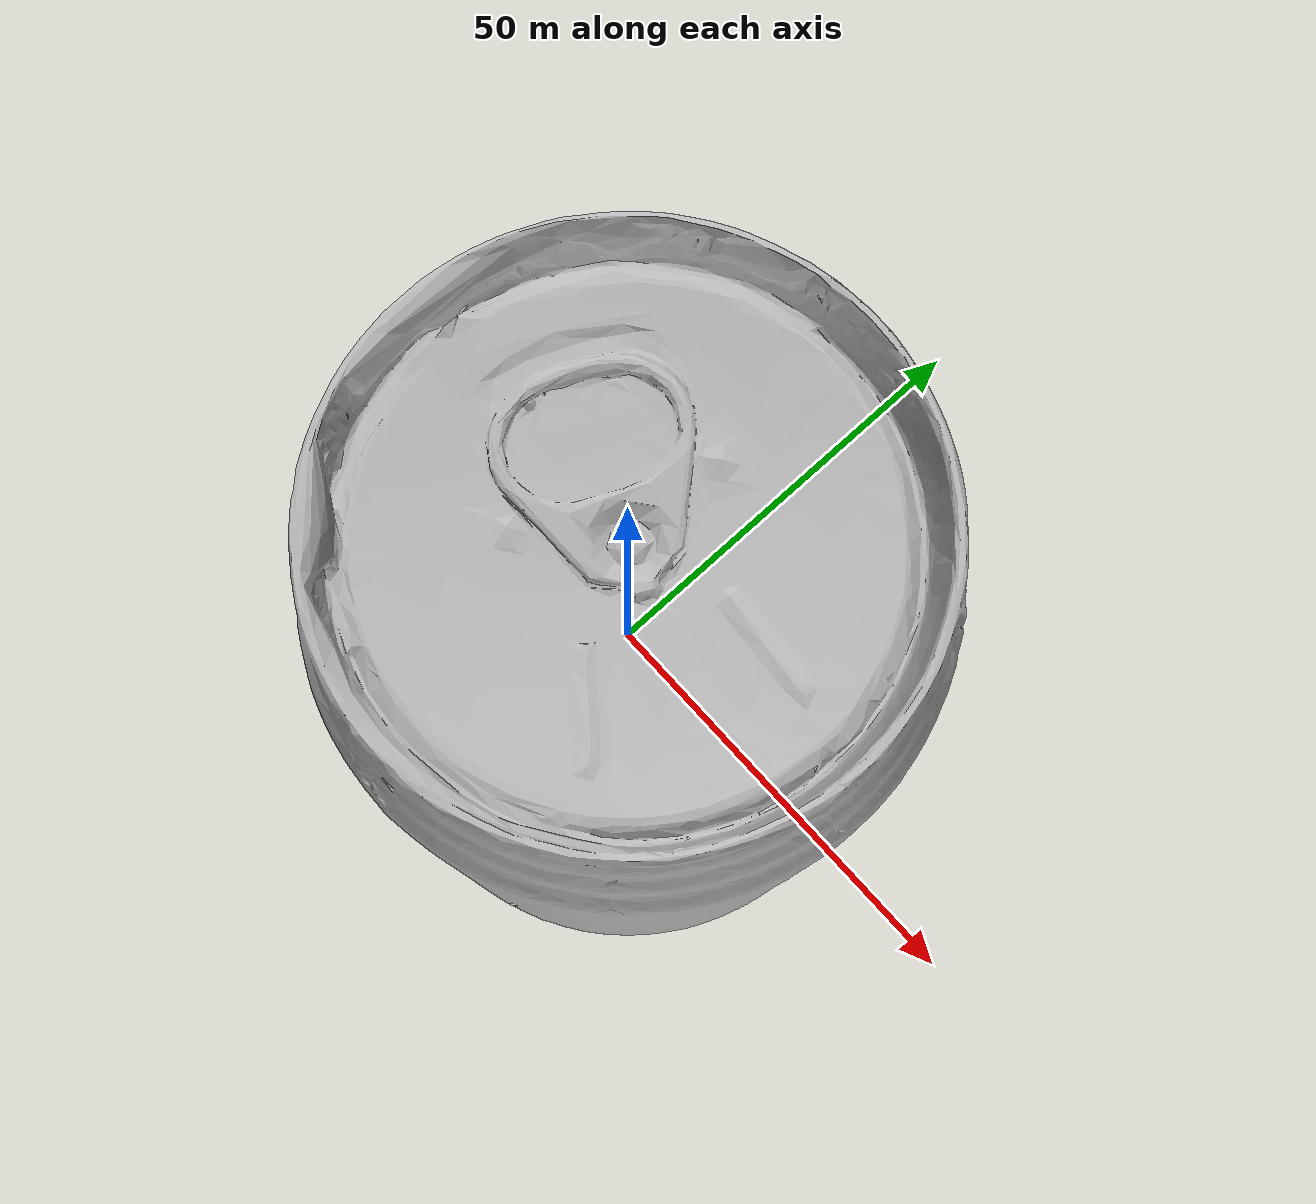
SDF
<sdf version="1.4">
 <world name="default">
  <light name="light1" type="point">
   <pose>0 0 1 0 0 0</pose>
   <diffuse>3 3 3 1</diffuse>
   <specular>3 3 3 1</specular>
  </light>
  <light name="light2" type="point">
   <pose>0 0.5 2 0 0 0</pose>
   <diffuse>1 1 1 1</diffuse>
   <specular>1 1 1 1</specular>
  </light>
  <light name="light3" type="point">
   <pose>0 0.5 2 0 0 0</pose>
   <diffuse>3 3 3 1</diffuse>
   <specular>3 3 3 1</specular>
  </light>
  <scene><ambient>0.7 0.7 0.7</ambient></scene>
  <model name="box2">
   <link name="link_box2">
    <collision name="default">
     <geometry>
      <mesh><uri>model://wooden_puzzle2/collision_meshes/collision.obj</uri><scale>1.0 1.0 1.0</scale></mesh>
     </geometry>
     <surface>
      <friction><ode><mu>0.5</mu><mu2>0.5</mu2></ode></friction>
      <contact><ode><max_vel>0</max_vel><min_depth>0.0001</min_depth><kp>1e8</kp></ode></contact>
     </surface>
    </collision>
    <visual name="default">
     <geometry>
      <mesh><uri>model://wooden_puzzle2/visual_meshes/visual.dae</uri><scale>1.0 1.0 1.0</scale></mesh>
     </geometry>
    </visual>
    <inertial>
     <mass>0.03464552015066147</mass>
     <pose>2.7402536943554878e-05 4.997663199901581e-05 6.587122334167361e-05 -0.1920274284601778 0.6112817660648215 -0.6338676817937987</pose>
     <inertia>
      <ixx>6.440233e-06</ixx>
      <iyy>6.6177017e-06</iyy>
      <izz>6.52356e-06</izz>
      <ixy>0</ixy>
      <ixz>0</ixz>
      <iyz>0</iyz>
     </inertia>
    </inertial>
   </link>
   <pose>-0.05110970884561539 0.38317883014678955 0.016917744651436806 0.020847647021230202 0.0007221889222049896 -3.097059253205963</pose>
  </model>
  <model name="box3">
   <link name="link_box3">
    <collision name="default">
     <geometry>
      <mesh><uri>model://wooden_puzzle1/collision_meshes/collision.obj</uri><scale>1.0 1.0 1.0</scale></mesh>
     </geometry>
     <surface>
      <friction><ode><mu>0.5</mu><mu2>0.5</mu2></ode></friction>
      <contact><ode><max_vel>0</max_vel><min_depth>0.0001</min_depth><kp>1e8</kp></ode></contact>
     </surface>
    </collision>
    <visual name="default">
     <geometry>
      <mesh><uri>model://wooden_puzzle1/visual_meshes/visual.dae</uri><scale>1.0 1.0 1.0</scale></mesh>
     </geometry>
    </visual>
    <inertial>
     <mass>0.03424873203039169</mass>
     <pose>-0.0001735068071866408 7.97226166469045e-05 -9.191554272547364e-05 -0.07784599296854997 -0.2636133645981781 -0.5528677830585703</pose>
     <inertia>
      <ixx>6.4618e-06</ixx>
      <iyy>6.3374077e-06</iyy>
      <izz>6.413012e-06</izz>
      <ixy>0</ixy>
      <ixz>0</ixz>
      <iyz>0</iyz>
     </inertia>
    </inertial>
   </link>
   <pose>0.09549501538276672 0.2652285099029541 0.016802025958895683 0.010510699748426989 -0.009455492169241514 -0.9628472074758734</pose>
  </model>
  <model name="can1">
   <link name="link_can1">
    <collision name="default">
     <geometry>
      <mesh><uri>model://pepsi/collision_meshes/collision.obj</uri><scale>1.0 1.0 1.0</scale></mesh>
     </geometry>
     <surface>
      <friction><ode><mu>0.5</mu><mu2>0.5</mu2></ode></friction>
      <contact><ode><max_vel>0</max_vel><min_depth>0.0001</min_depth><kp>1e8</kp></ode></contact>
     </surface>
    </collision>
    <visual name="default">
     <geometry><mesh><uri>model://pepsi/visual_meshes/visual.dae</uri><scale>1.0 1.0 1.0</scale></mesh></geometry>
    </visual>
    <inertial>
     <mass>0.3250696361064911</mass>
     <pose>-7.5590331107378e-05 2.99312814604491e-05 -0.0003384356386959553 -0.0010678660158137958 -0.0021735266966629516 0.5674177426725915</pose>
     <inertia>
      <ixx>0.0006476009</ixx>
      <iyy>0.0006471292</iyy>
      <izz>0.00013783273</izz>
      <ixy>0</ixy>
      <ixz>0</ixz>
      <iyz>0</iyz>
     </inertia>
    </inertial>
   </link>
   <pose>-0.06954823434352875 -0.20489339530467987 0.07449636608362198 -1.924137852810632e-05 1.8442182524699707e-06 -0.4391687054676795</pose>
  </model>
  <model name="can2">
   <link name="link_can2">
    <collision name="default">
     <geometry>
      <mesh><uri>model://redbull/collision_meshes/collision.obj</uri><scale>1.0 1.0 1.0</scale></mesh>
     </geometry>
     <surface>
      <friction><ode><mu>0.5</mu><mu2>0.5</mu2></ode></friction>
      <contact><ode><max_vel>0</max_vel><min_depth>0.0001</min_depth><kp>1e8</kp></ode></contact>
     </surface>
    </collision>
    <visual name="default">
     <geometry>
      <mesh><uri>model://redbull/visual_meshes/visual.dae</uri><scale>1.0 1.0 1.0</scale></mesh>
     </geometry>
    </visual>
    <inertial>
     <mass>0.28235653042793274</mass>
     <pose>-2.2127058400656097e-05 -0.00012659600179176778 -0.0006860987632535398 0.0011377565977294822 -0.010800863454111471 0.5858141898730843</pose>
     <inertia>
      <ixx>0.0002654759</ixx>
      <iyy>0.0002657</iyy>
      <izz>0.00015754026</izz>
      <ixy>0</ixy>
      <ixz>0</ixz>
      <iyz>0</iyz>
     </inertia>
    </inertial>
   </link>
   <pose>0.26745015382766724 -0.08828902989625931 0.04638563469052315 -0.010489424712488312 0.007261313421617878 -1.5651675199568174</pose>
  </model>
  <physics type="ode">
   <max_contacts>50</max_contacts>
   <ode>
    <solver><type>quick</type><iters>75</iters></solver>
    <constraints>
     <contact_max_correcting_vel>0</contact_max_correcting_vel>
     <contact_surface_layer>0</contact_surface_layer>
    </constraints>
   </ode>
  </physics>
 </world>
</sdf>
